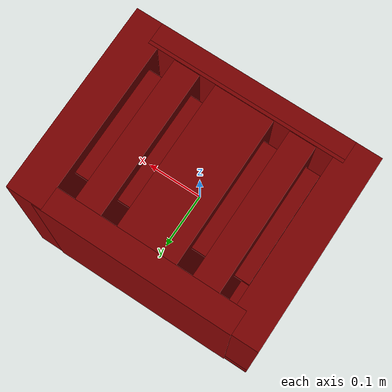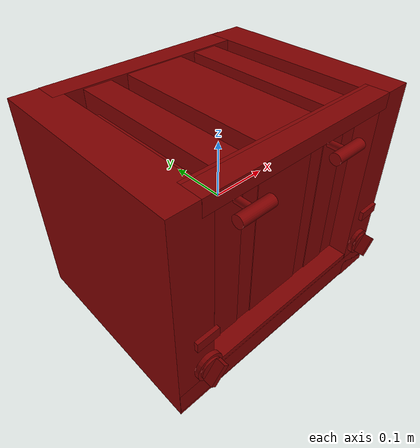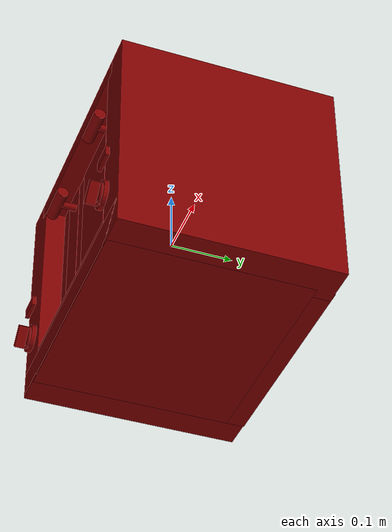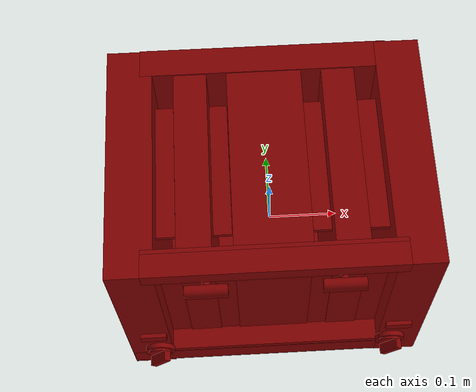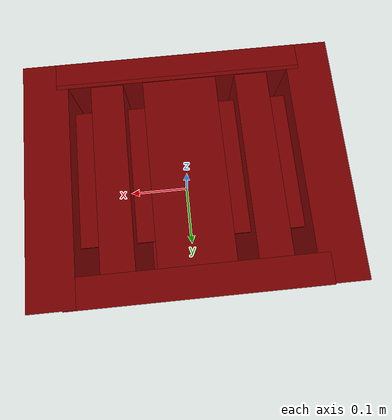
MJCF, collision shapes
<?xml version='1.0' encoding='UTF-8'?>
<mujoco model="model">
  <compiler angle="radian"/>
  <asset>
    <mesh file="visuals/Body001.obj" name="Body001_vis"/>
    <mesh file="visuals/Body002.obj" name="Body002_vis"/>
    <mesh file="visuals/Button001.obj" name="Button001_vis"/>
    <mesh file="visuals/Button002.obj" name="Button002_vis"/>
    <mesh file="visuals/Knob001.obj" name="Knob001_vis"/>
    <mesh file="visuals/Knob002.obj" name="Knob002_vis"/>
    <mesh file="visuals/Lever001.obj" name="Lever001_vis"/>
    <mesh file="visuals/Lever002.obj" name="Lever002_vis"/>
    <texture file="visuals/T_BC001.png" name="Body001_material" type="2d"/>
    <material name="Body001_material" rgba="1 1 1 1.0" texture="Body001_material" shininess="0.141421377658844" specular="2"/>
    <texture file="visuals/T_BC001.png" name="Body002_material" type="2d"/>
    <material name="Body002_material" rgba="1 1 1 1.0" texture="Body002_material" shininess="0.141421377658844" specular="2"/>
    <texture file="visuals/T_BC001.png" name="Button001_material" type="2d"/>
    <material name="Button001_material" rgba="1 1 1 1.0" texture="Button001_material" shininess="0.141421377658844" specular="0.3103448502657381"/>
    <texture file="visuals/T_BC001.png" name="Button002_material" type="2d"/>
    <material name="Button002_material" rgba="1 1 1 1.0" texture="Button002_material" shininess="0.141421377658844" specular="0.3103448502657381"/>
    <texture file="visuals/T_BC001.png" name="Knob001_material" type="2d"/>
    <material name="Knob001_material" rgba="1 1 1 1.0" texture="Knob001_material" shininess="0.141421377658844" specular="0.3103448502657381"/>
    <texture file="visuals/T_BC001.png" name="Knob002_material" type="2d"/>
    <material name="Knob002_material" rgba="1 1 1 1.0" texture="Knob002_material" shininess="0.141421377658844" specular="0.3103448502657381"/>
    <texture file="visuals/T_BC001.png" name="Lever001_material" type="2d"/>
    <material name="Lever001_material" rgba="1 1 1 1.0" texture="Lever001_material" shininess="0.141421377658844" specular="3"/>
    <texture file="visuals/T_BC001.png" name="Lever002_material" type="2d"/>
    <material name="Lever002_material" rgba="1 1 1 1.0" texture="Lever002_material" shininess="0.141421377658844" specular="3"/>
  </asset>
  <default>
    <default class="visual">
      <geom conaffinity="0" contype="0" group="1" type="mesh"/>
    </default>
    <default class="collision">
      <geom group="0" rgba="0.5 0 0 0.5"/>
    </default>
    <default class="spawn">
      <geom group="0" rgba="1 1 1 0.5" contype="0" conaffinity="0"/>
      <site group="0" rgba="1 1 1 0.5"/>
    </default>
    <default class="region">
      <geom group="1" conaffinity="0" contype="0" rgba="0 1 0 0"/>
    </default>
  </default>
  <worldbody>
    <body>
      <body name="object">
        <geom mesh="Body001_vis" type="mesh" solimp="0.998 0.998 0.001" solref="0.001 1" density="100" friction="0.95 0.3 0.1" class="visual" material="Body001_material"/>
        <geom class="collision" type="box" pos="-0.189324 0.012501 0.000002" size="0.03158983215689659 0.1725785881280899 0.17859821021556854" quat="1.0 0.0 0.0 0.0"/>
        <geom class="collision" type="box" pos="0.000398 0.165246 0.000002" size="0.17537757754325867 0.02102925442159176 0.1785985380411148" quat="1.0 0.0 0.0 0.0"/>
        <geom class="collision" type="box" pos="0.191045 0.012501 0.000002" size="0.031911276280879974 0.17257925868034363 0.17859886586666107" quat="1.0 0.0 0.0 0.0"/>
        <geom class="collision" type="box" pos="-0.000556 0.009093 -0.000807" size="0.05268297344446182 0.13771720230579376 0.17778992652893066" quat="1.0 0.0 0.0 0.0"/>
        <geom class="collision" type="box" pos="-0.104815 0.009093 -0.001169" size="0.02332262322306633 0.13771754503250122 0.17742854356765747" quat="1.0 0.0 0.0 0.0"/>
        <geom class="collision" type="box" pos="0.103996 0.009093 -0.001169" size="0.023167718201875687 0.13771787285804749 0.17742887139320374" quat="1.0 0.0 0.0 0.0"/>
        <geom class="collision" type="box" pos="0.000398 -0.000877 -0.152782" size="0.17537923157215118 0.1582469642162323 0.02581915445625782" quat="1.0 0.0 0.0 0.0"/>
        <geom class="collision" type="box" pos="0.000398 -0.143697 0.166272" size="0.175379678606987 0.01644795574247837 0.012329429388046265" quat="1.0 0.0 0.0 0.0"/>
        <geom class="collision" type="box" pos="0.000398 -0.124294 0.000001" size="0.17538000643253326 0.0030128464568406343 0.17859992384910583" quat="1.0 0.0 0.0 0.0"/>
        <geom class="collision" type="box" pos="0.001223 0.012501 -0.154765" size="0.221732959151268 0.17257922887802124 0.01895752362906933" quat="1.0 0.0 0.0 0.0"/>
        <body name="Body002">
          <geom mesh="Body002_vis" type="mesh" solimp="0.998 0.998 0.001" solref="0.001 1" density="100" friction="0.95 0.3 0.1" class="visual" material="Body002_material"/>
        </body>
        <body name="Button001">
          <joint axis="0.0 1.0 0.0" pos="0.180642 -0.166434 -0.033942" limited="true" name="Button001_joint" range="0.0 0.005" type="slide" damping="1" frictionloss="1" armature=".01" stiffness="0.05"/>
          <geom mesh="Button001_vis" type="mesh" solimp="0.998 0.998 0.001" solref="0.001 1" density="100" friction="0.95 0.3 0.1" class="visual" material="Button001_material"/>
          <geom class="collision" type="box" pos="0.181578 -0.169874 -0.034011" size="0.018710516393184662 0.003050676779821515 0.00814784038811922" quat="1.0 0.0 0.0 0.0"/>
        </body>
        <body name="Button002">
          <joint axis="0.0 1.0 0.0" pos="-0.179339 -0.166434 -0.033942" limited="true" name="Button002_joint" range="0.0 0.005" type="slide" damping="1" frictionloss="1" armature=".01" stiffness="0.05"/>
          <geom mesh="Button002_vis" type="mesh" solimp="0.998 0.998 0.001" solref="0.001 1" density="100" friction="0.95 0.3 0.1" class="visual" material="Button002_material"/>
          <geom class="collision" type="box" pos="-0.178714 -0.169874 -0.034011" size="0.018710484728217125 0.003050672821700573 0.00814783200621605" quat="1.0 0.0 0.0 0.0"/>
        </body>
        <body name="Knob001">
          <joint axis="0.0 1.0 0.0" pos="-0.175352 -0.176960 -0.098035" limited="true" name="Knob001_joint" range="0.0 3.979350694547071" type="hinge" damping="0.05" armature="0.001" springref="-0.4"/>
          <geom mesh="Knob001_vis" type="mesh" solimp="0.998 0.998 0.001" solref="0.001 1" density="100" friction="0.95 0.3 0.1" class="visual" material="Knob001_material"/>
          <geom class="collision" type="cylinder" pos="-0.175336 -0.168173 -0.097859" size="0.021930573508143425 0.0035403200890868902" quat="5.338508657359853e-08 5.3385068810030134e-08 0.7071067690849304 0.7071068286895752"/>
          <geom class="collision" type="cylinder" pos="-0.175336 -0.171623 -0.097859" size="0.017241286113858223 0.0035403200890868902" quat="5.338508657359853e-08 5.3385068810030134e-08 0.7071067690849304 0.7071068286895752"/>
          <geom class="collision" type="box" pos="-0.175334 -0.182373 -0.098077" size="0.005339017137885094 0.007695164065808058 0.017060521990060806" quat="0.9304175972938538 0.0 0.36650121212005615 0.0"/>
        </body>
        <body name="Knob002">
          <joint axis="0.0 1.0 0.0" pos="0.175228 -0.176960 -0.098035" limited="true" name="Knob002_joint" range="0.0 3.979350694547071" type="hinge" damping="0.05" armature="0.001" springref="-0.4"/>
          <geom mesh="Knob002_vis" type="mesh" solimp="0.998 0.998 0.001" solref="0.001 1" density="100" friction="0.95 0.3 0.1" class="visual" material="Knob002_material"/>
          <geom class="collision" type="cylinder" pos="0.175269 -0.168173 -0.097859" size="0.021930573508143425 0.0035403200890868902" quat="5.338508657359853e-08 5.3385068810030134e-08 0.7071067690849304 0.7071068286895752"/>
          <geom class="collision" type="cylinder" pos="0.175269 -0.171623 -0.097859" size="0.017241286113858223 0.0035403200890868902" quat="5.338508657359853e-08 5.3385068810030134e-08 0.7071067690849304 0.7071068286895752"/>
          <geom class="collision" type="box" pos="0.175271 -0.182373 -0.098077" size="0.005339016206562519 0.0076951622031629086 0.017060521990060806" quat="0.9304175972938538 0.0 0.36650121212005615 0.0"/>
        </body>
        <body name="Lever001">
          <joint axis="0.0 0.0 -1.0" pos="-0.093024 -0.148668 0.117142" limited="true" name="Lever001_joint" range="0.0 0.195" type="slide" damping="1" frictionloss="1" armature=".01" stiffness="1" springref="-2"/>
          <geom mesh="Lever001_vis" type="mesh" solimp="0.998 0.998 0.001" solref="0.001 1" density="100" friction="0.95 0.3 0.1" class="visual" material="Lever001_material"/>
          <geom class="collision" type="cylinder" pos="-0.093165 -0.140825 0.117177" size="0.005783515516668558 0.012287302874028683" quat="0.7071068286895752 0.7071067690849304 0.0 0.0"/>
          <geom class="collision" type="cylinder" pos="-0.092848 -0.159511 0.117216" size="0.009436491876840591 0.02935711294412613" quat="0.5000000596046448 0.5 0.4999999701976776 0.5" name="sideL_lever_knob"/>
          <geom class="collision" type="box" pos="-0.067160 0.006132 0.149052" size="0.012580212205648422 0.09971249103546143 0.003047339851036668" quat="1.0 0.0 0.0 0.0" name="sideL_slotR_floor"/>
          <geom class="collision" type="box" pos="-0.143030 0.006132 0.149052" size="0.012878425419330597 0.09971249103546143 0.0030473258811980486" quat="1.0 0.0 0.0 0.0" name="sideL_slotL_floor"/>
        </body>
        <body name="Lever002">
          <joint axis="0.0 0.0 -1.0" pos="0.093055 -0.148668 0.117142" limited="true" name="Lever002_joint" range="0.0 0.195" type="slide" damping="1" frictionloss="1" armature=".01" stiffness="1" springref="-2"/>
          <geom mesh="Lever002_vis" type="mesh" solimp="0.998 0.998 0.001" solref="0.001 1" density="100" friction="0.95 0.3 0.1" class="visual" material="Lever002_material"/>
          <geom class="collision" type="cylinder" pos="0.093264 -0.159511 0.117216" size="0.009436491876840591 0.029357105493545532" quat="0.5000000596046448 0.5 0.4999999701976776 0.5" name="sideR_lever_knob"/>
          <geom class="collision" type="cylinder" pos="0.092947 -0.140825 0.117177" size="0.005783515516668558 0.012287302874028683" quat="0.7071068286895752 0.7071067690849304 0.0 0.0"/>
          <geom class="collision" type="box" pos="0.143064 0.006132 0.149052" size="0.013967897742986679 0.09971218556165695 0.0030473286751657724" quat="1.0 0.0 0.0 0.0" name="sideR_slotR_floor"/>
          <geom class="collision" type="box" pos="0.066438 0.006132 0.149052" size="0.0126280402764678 0.09971301257610321 0.0030473258811980486" quat="1.0 0.0 0.0 0.0" name="sideR_slotL_floor"/>
        </body>
        <geom class="region" name="reg_main" type="box" pos="0.0 0.009207499999999993 0.0" size="0.22628 0.1807245 0.178601"/>
      </body>
    </body>
  </worldbody>
  <actuator>
    <motor name="Button001_joint_actuator" joint="Button001_joint" gear="0.5"/>
    <motor name="Button002_joint_actuator" joint="Button002_joint" gear="0.5"/>
    <motor name="Knob001_joint_actuator" joint="Knob001_joint" gear="10"/>
    <motor name="Knob002_joint_actuator" joint="Knob002_joint" gear="10"/>
    <motor name="Lever001_joint_actuator" joint="Lever001_joint" gear="40"/>
    <motor name="Lever002_joint_actuator" joint="Lever002_joint" gear="40"/>
  </actuator>
</mujoco>
